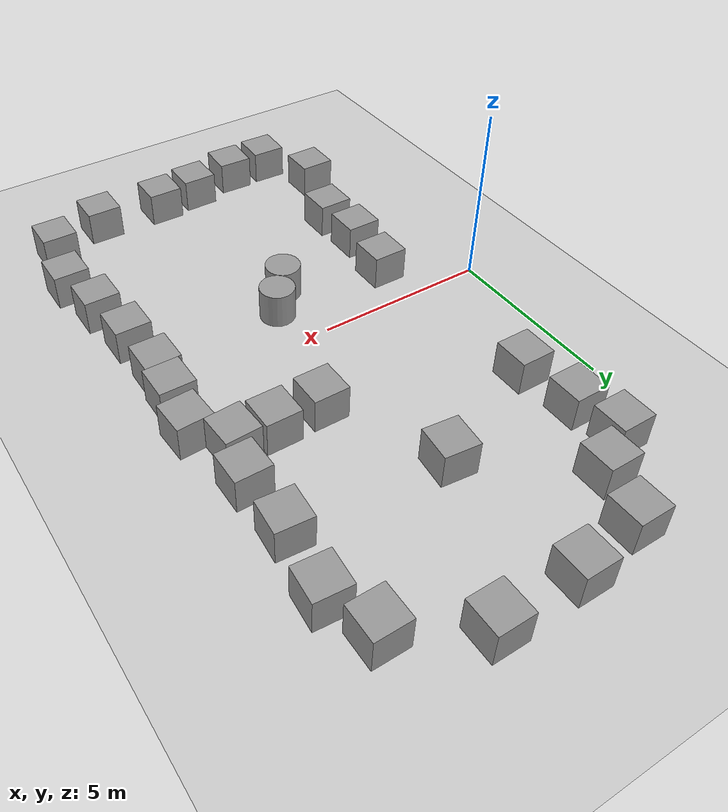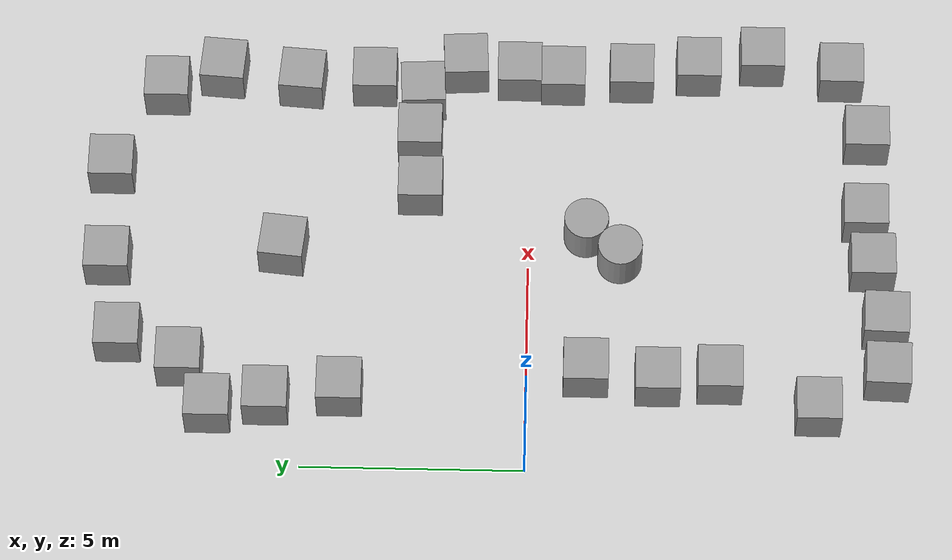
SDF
<sdf version="1.6">
 <world name="default">
  <light name="sun" type="directional">
   <pose>0 0 10 0 -0 0</pose>
   <diffuse>0.8 0.8 0.8 1</diffuse>
   <specular>0.1 0.1 0.1 1</specular>
   <attenuation>
    <range>1000</range>
    <constant>0.9</constant>
    <linear>0.01</linear>
    <quadratic>0.001</quadratic>
   </attenuation>
   <direction>-0.5 0.5 -1</direction>
  </light>
  <model name="ground_plane">
   <static>1</static>
   <link name="link">
    <collision name="collision">
     <geometry><plane><normal>0 0 1</normal><size>100 100</size></plane></geometry>
     <surface><friction><ode><mu>100</mu><mu2>50</mu2></ode></friction></surface>
    </collision>
    <visual name="visual">
     <cast_shadows>0</cast_shadows>
     <geometry><plane><normal>0 0 1</normal><size>100 100</size></plane></geometry>
     <material>
      <script><uri>file://media/materials/scripts/gazebo.material</uri><name>Gazebo/Grey</name></script>
     </material>
    </visual>
   </link>
  </model>
  <gravity>0 0 -9.8</gravity>
  <magnetic_field>6e-06 2.3e-05 -4.2e-05</magnetic_field>
  <atmosphere type="adiabatic"/>
  <physics name="default_physics" default="0" type="ode">
   <max_step_size>0.001</max_step_size>
   <real_time_factor>1</real_time_factor>
   <real_time_update_rate>1000</real_time_update_rate>
  </physics>
  <scene><ambient>0.4 0.4 0.4 1</ambient><background>0.7 0.7 0.7 1</background><shadows>1</shadows></scene>
  <spherical_coordinates>
   <surface_model>EARTH_WGS84</surface_model>
   <latitude_deg>0</latitude_deg>
   <longitude_deg>0</longitude_deg>
   <elevation>0</elevation>
   <heading_deg>0</heading_deg>
  </spherical_coordinates>
  <model name="unit_box_0">
   <pose>1.47248 -6.47187 0.499995 0 -1e-05 -0.001074</pose>
   <link name="link">
    <inertial>
     <mass>1</mass>
     <inertia>
      <ixx>0.166667</ixx>
      <ixy>0</ixy>
      <ixz>0</ixz>
      <iyy>0.166667</iyy>
      <iyz>0</iyz>
      <izz>0.166667</izz>
     </inertia>
    </inertial>
    <collision name="collision"><geometry><box><size>1 1 1</size></box></geometry></collision>
    <visual name="visual">
     <geometry><box><size>1 1 1</size></box></geometry>
     <material>
      <script><name>Gazebo/Grey</name><uri>file://media/materials/scripts/gazebo.material</uri></script>
     </material>
    </visual>
   </link>
  </model>
  <model name="unit_box_1">
   <pose>2.36247 -8.02475 0.499995 1e-05 0 -0.034213</pose>
   <link name="link">
    <inertial>
     <mass>1</mass>
     <inertia>
      <ixx>0.166667</ixx>
      <ixy>0</ixy>
      <ixz>0</ixz>
      <iyy>0.166667</iyy>
      <iyz>0</iyz>
      <izz>0.166667</izz>
     </inertia>
    </inertial>
    <collision name="collision"><geometry><box><size>1 1 1</size></box></geometry></collision>
    <visual name="visual">
     <geometry><box><size>1 1 1</size></box></geometry>
     <material>
      <script><name>Gazebo/Grey</name><uri>file://media/materials/scripts/gazebo.material</uri></script>
     </material>
    </visual>
   </link>
  </model>
  <model name="unit_box_2">
   <pose>1.51353 5.78351 0.499995 1e-05 -0 0</pose>
   <link name="link">
    <inertial>
     <mass>1</mass>
     <inertia>
      <ixx>0.166667</ixx>
      <ixy>0</ixy>
      <ixz>0</ixz>
      <iyy>0.166667</iyy>
      <iyz>0</iyz>
      <izz>0.166667</izz>
     </inertia>
    </inertial>
    <collision name="collision"><geometry><box><size>1 1 1</size></box></geometry></collision>
    <visual name="visual">
     <geometry><box><size>1 1 1</size></box></geometry>
     <material>
      <script><name>Gazebo/Grey</name><uri>file://media/materials/scripts/gazebo.material</uri></script>
     </material>
    </visual>
   </link>
  </model>
  <model name="unit_box_3">
   <pose>5.06273 -7.73261 0.499995 0 1e-05 0</pose>
   <link name="link">
    <inertial>
     <mass>1</mass>
     <inertia>
      <ixx>0.166667</ixx>
      <ixy>0</ixy>
      <ixz>0</ixz>
      <iyy>0.166667</iyy>
      <iyz>0</iyz>
      <izz>0.166667</izz>
     </inertia>
    </inertial>
    <collision name="collision"><geometry><box><size>1 1 1</size></box></geometry></collision>
    <visual name="visual">
     <geometry><box><size>1 1 1</size></box></geometry>
     <material>
      <script><name>Gazebo/Grey</name><uri>file://media/materials/scripts/gazebo.material</uri></script>
     </material>
    </visual>
   </link>
  </model>
  <model name="unit_box_4">
   <pose>6.31087 -7.59314 0.499995 -1e-05 -0 -0.00582</pose>
   <link name="link">
    <inertial>
     <mass>1</mass>
     <inertia>
      <ixx>0.166667</ixx>
      <ixy>0</ixy>
      <ixz>0</ixz>
      <iyy>0.166667</iyy>
      <iyz>0</iyz>
      <izz>0.166667</izz>
     </inertia>
    </inertial>
    <collision name="collision"><geometry><box><size>1 1 1</size></box></geometry></collision>
    <visual name="visual">
     <geometry><box><size>1 1 1</size></box></geometry>
     <material>
      <script><name>Gazebo/Grey</name><uri>file://media/materials/scripts/gazebo.material</uri></script>
     </material>
    </visual>
   </link>
  </model>
  <model name="unit_box_5">
   <pose>8.30845 -7.65271 0.499995 0 1e-05 -0.006526</pose>
   <link name="link">
    <inertial>
     <mass>1</mass>
     <inertia>
      <ixx>0.166667</ixx>
      <ixy>0</ixy>
      <ixz>0</ixz>
      <iyy>0.166667</iyy>
      <iyz>0</iyz>
      <izz>0.166667</izz>
     </inertia>
    </inertial>
    <collision name="collision"><geometry><box><size>1 1 1</size></box></geometry></collision>
    <visual name="visual">
     <geometry><box><size>1 1 1</size></box></geometry>
     <material>
      <script><name>Gazebo/Grey</name><uri>file://media/materials/scripts/gazebo.material</uri></script>
     </material>
    </visual>
   </link>
  </model>
  <model name="unit_box_6">
   <pose>9.93293 -7.09402 0.499995 -1e-05 0 -0.006505</pose>
   <link name="link">
    <inertial>
     <mass>1</mass>
     <inertia>
      <ixx>0.166667</ixx>
      <ixy>0</ixy>
      <ixz>0</ixz>
      <iyy>0.166667</iyy>
      <iyz>0</iyz>
      <izz>0.166667</izz>
     </inertia>
    </inertial>
    <collision name="collision"><geometry><box><size>1 1 1</size></box></geometry></collision>
    <visual name="visual">
     <geometry><box><size>1 1 1</size></box></geometry>
     <material>
      <script><name>Gazebo/Grey</name><uri>file://media/materials/scripts/gazebo.material</uri></script>
     </material>
    </visual>
   </link>
  </model>
  <model name="unit_box_7">
   <pose>10.3072 -5.29039 0.499995 -1e-05 0 0</pose>
   <link name="link">
    <inertial>
     <mass>1</mass>
     <inertia>
      <ixx>0.166667</ixx>
      <ixy>0</ixy>
      <ixz>0</ixz>
      <iyy>0.166667</iyy>
      <iyz>0</iyz>
      <izz>0.166667</izz>
     </inertia>
    </inertial>
    <collision name="collision"><geometry><box><size>1 1 1</size></box></geometry></collision>
    <visual name="visual">
     <geometry><box><size>1 1 1</size></box></geometry>
     <material>
      <script><name>Gazebo/Grey</name><uri>file://media/materials/scripts/gazebo.material</uri></script>
     </material>
    </visual>
   </link>
  </model>
  <model name="unit_box_8">
   <pose>10.0206 -3.83179 0.499995 0 1e-05 0</pose>
   <link name="link">
    <inertial>
     <mass>1</mass>
     <inertia>
      <ixx>0.166667</ixx>
      <ixy>0</ixy>
      <ixz>0</ixz>
      <iyy>0.166667</iyy>
      <iyz>0</iyz>
      <izz>0.166667</izz>
     </inertia>
    </inertial>
    <collision name="collision"><geometry><box><size>1 1 1</size></box></geometry></collision>
    <visual name="visual">
     <geometry><box><size>1 1 1</size></box></geometry>
     <material>
      <script><name>Gazebo/Grey</name><uri>file://media/materials/scripts/gazebo.material</uri></script>
     </material>
    </visual>
   </link>
  </model>
  <model name="unit_box_9">
   <pose>9.81542 -2.29377 0.499995 -1e-05 0 0</pose>
   <link name="link">
    <inertial>
     <mass>1</mass>
     <inertia>
      <ixx>0.166667</ixx>
      <ixy>0</ixy>
      <ixz>0</ixz>
      <iyy>0.166667</iyy>
      <iyz>0</iyz>
      <izz>0.166667</izz>
     </inertia>
    </inertial>
    <collision name="collision"><geometry><box><size>1 1 1</size></box></geometry></collision>
    <visual name="visual">
     <geometry><box><size>1 1 1</size></box></geometry>
     <material>
      <script><name>Gazebo/Grey</name><uri>file://media/materials/scripts/gazebo.material</uri></script>
     </material>
    </visual>
   </link>
  </model>
  <model name="unit_box_10">
   <pose>9.72439 -0.722401 0.499995 0 1e-05 -8.2e-05</pose>
   <link name="link">
    <inertial>
     <mass>1</mass>
     <inertia>
      <ixx>0.166667</ixx>
      <ixy>0</ixy>
      <ixz>0</ixz>
      <iyy>0.166667</iyy>
      <iyz>0</iyz>
      <izz>0.166667</izz>
     </inertia>
    </inertial>
    <collision name="collision"><geometry><box><size>1 1 1</size></box></geometry></collision>
    <visual name="visual">
     <geometry><box><size>1 1 1</size></box></geometry>
     <material>
      <script><name>Gazebo/Grey</name><uri>file://media/materials/scripts/gazebo.material</uri></script>
     </material>
    </visual>
   </link>
  </model>
  <model name="unit_box_11">
   <pose>9.81757 0.277598 0.499995 -0 -1e-05 -8.2e-05</pose>
   <link name="link">
    <inertial>
     <mass>1</mass>
     <inertia>
      <ixx>0.166667</ixx>
      <ixy>0</ixy>
      <ixz>0</ixz>
      <iyy>0.166667</iyy>
      <iyz>0</iyz>
      <izz>0.166667</izz>
     </inertia>
    </inertial>
    <collision name="collision"><geometry><box><size>1 1 1</size></box></geometry></collision>
    <visual name="visual">
     <geometry><box><size>1 1 1</size></box></geometry>
     <material>
      <script><name>Gazebo/Grey</name><uri>file://media/materials/scripts/gazebo.material</uri></script>
     </material>
    </visual>
   </link>
  </model>
  <model name="unit_box_12">
   <pose>10.0072 1.51726 0.5 0 -0 0.050217</pose>
   <link name="link">
    <inertial>
     <mass>1</mass>
     <inertia>
      <ixx>0.166667</ixx>
      <ixy>0</ixy>
      <ixz>0</ixz>
      <iyy>0.166667</iyy>
      <iyz>0</iyz>
      <izz>0.166667</izz>
     </inertia>
    </inertial>
    <collision name="collision"><geometry><box><size>1 1 1</size></box></geometry></collision>
    <visual name="visual">
     <geometry><box><size>1 1 1</size></box></geometry>
     <material>
      <script><name>Gazebo/Grey</name><uri>file://media/materials/scripts/gazebo.material</uri></script>
     </material>
    </visual>
   </link>
  </model>
  <model name="unit_box_13">
   <pose>9.25746 2.48178 0.499995 0 1e-05 0.050215</pose>
   <link name="link">
    <inertial>
     <mass>1</mass>
     <inertia>
      <ixx>0.166667</ixx>
      <ixy>0</ixy>
      <ixz>0</ixz>
      <iyy>0.166667</iyy>
      <iyz>0</iyz>
      <izz>0.166667</izz>
     </inertia>
    </inertial>
    <collision name="collision"><geometry><box><size>1 1 1</size></box></geometry></collision>
    <visual name="visual">
     <geometry><box><size>1 1 1</size></box></geometry>
     <material>
      <script><name>Gazebo/Grey</name><uri>file://media/materials/scripts/gazebo.material</uri></script>
     </material>
    </visual>
   </link>
  </model>
  <model name="unit_box_14">
   <pose>9.61086 3.59614 0.499995 1e-05 -0 0</pose>
   <link name="link">
    <inertial>
     <mass>1</mass>
     <inertia>
      <ixx>0.166667</ixx>
      <ixy>0</ixy>
      <ixz>0</ixz>
      <iyy>0.166667</iyy>
      <iyz>0</iyz>
      <izz>0.166667</izz>
     </inertia>
    </inertial>
    <collision name="collision"><geometry><box><size>1 1 1</size></box></geometry></collision>
    <visual name="visual">
     <geometry><box><size>1 1 1</size></box></geometry>
     <material>
      <script><name>Gazebo/Grey</name><uri>file://media/materials/scripts/gazebo.material</uri></script>
     </material>
    </visual>
   </link>
  </model>
  <model name="unit_box_15">
   <pose>9.54674 5.25732 0.499999 3e-06 -0 -0.074317</pose>
   <link name="link">
    <inertial>
     <mass>1</mass>
     <inertia>
      <ixx>0.166667</ixx>
      <ixy>0</ixy>
      <ixz>0</ixz>
      <iyy>0.166667</iyy>
      <iyz>0</iyz>
      <izz>0.166667</izz>
     </inertia>
    </inertial>
    <collision name="collision"><geometry><box><size>1 1 1</size></box></geometry></collision>
    <visual name="visual">
     <geometry><box><size>1 1 1</size></box></geometry>
     <material>
      <script><name>Gazebo/Grey</name><uri>file://media/materials/scripts/gazebo.material</uri></script>
     </material>
    </visual>
   </link>
  </model>
  <model name="unit_box_16">
   <pose>9.77568 7.07199 0.5 0 0 -0.074297</pose>
   <link name="link">
    <inertial>
     <mass>1</mass>
     <inertia>
      <ixx>0.166667</ixx>
      <ixy>0</ixy>
      <ixz>0</ixz>
      <iyy>0.166667</iyy>
      <iyz>0</iyz>
      <izz>0.166667</izz>
     </inertia>
    </inertial>
    <collision name="collision"><geometry><box><size>1 1 1</size></box></geometry></collision>
    <visual name="visual">
     <geometry><box><size>1 1 1</size></box></geometry>
     <material>
      <script><name>Gazebo/Grey</name><uri>file://media/materials/scripts/gazebo.material</uri></script>
     </material>
    </visual>
   </link>
  </model>
  <model name="unit_box_17">
   <pose>9.29263 8.3522 0.499995 1e-05 -0 0</pose>
   <link name="link">
    <inertial>
     <mass>1</mass>
     <inertia>
      <ixx>0.166667</ixx>
      <ixy>0</ixy>
      <ixz>0</ixz>
      <iyy>0.166667</iyy>
      <iyz>0</iyz>
      <izz>0.166667</izz>
     </inertia>
    </inertial>
    <collision name="collision"><geometry><box><size>1 1 1</size></box></geometry></collision>
    <visual name="visual">
     <geometry><box><size>1 1 1</size></box></geometry>
     <material>
      <script><name>Gazebo/Grey</name><uri>file://media/materials/scripts/gazebo.material</uri></script>
     </material>
    </visual>
   </link>
  </model>
  <model name="unit_box_18">
   <pose>7.23197 9.50984 0.499995 0 1e-05 0</pose>
   <link name="link">
    <inertial>
     <mass>1</mass>
     <inertia>
      <ixx>0.166667</ixx>
      <ixy>0</ixy>
      <ixz>0</ixz>
      <iyy>0.166667</iyy>
      <iyz>0</iyz>
      <izz>0.166667</izz>
     </inertia>
    </inertial>
    <collision name="collision"><geometry><box><size>1 1 1</size></box></geometry></collision>
    <visual name="visual">
     <geometry><box><size>1 1 1</size></box></geometry>
     <material>
      <script><name>Gazebo/Grey</name><uri>file://media/materials/scripts/gazebo.material</uri></script>
     </material>
    </visual>
   </link>
  </model>
  <model name="unit_box_19">
   <pose>2.41884 7.74542 0.499995 -1e-05 0 0</pose>
   <link name="link">
    <inertial>
     <mass>1</mass>
     <inertia>
      <ixx>0.166667</ixx>
      <ixy>0</ixy>
      <ixz>0</ixz>
      <iyy>0.166667</iyy>
      <iyz>0</iyz>
      <izz>0.166667</izz>
     </inertia>
    </inertial>
    <collision name="collision"><geometry><box><size>1 1 1</size></box></geometry></collision>
    <visual name="visual">
     <geometry><box><size>1 1 1</size></box></geometry>
     <material>
      <script><name>Gazebo/Grey</name><uri>file://media/materials/scripts/gazebo.material</uri></script>
     </material>
    </visual>
   </link>
  </model>
  <model name="unit_box_20">
   <pose>4.90563 9.4816 0.499995 0 1e-05 0</pose>
   <link name="link">
    <inertial>
     <mass>1</mass>
     <inertia>
      <ixx>0.166667</ixx>
      <ixy>0</ixy>
      <ixz>0</ixz>
      <iyy>0.166667</iyy>
      <iyz>0</iyz>
      <izz>0.166667</izz>
     </inertia>
    </inertial>
    <collision name="collision"><geometry><box><size>1 1 1</size></box></geometry></collision>
    <visual name="visual">
     <geometry><box><size>1 1 1</size></box></geometry>
     <material>
      <script><name>Gazebo/Grey</name><uri>file://media/materials/scripts/gazebo.material</uri></script>
     </material>
    </visual>
   </link>
  </model>
  <model name="unit_box_21">
   <pose>1.29829 7.06059 0.499995 -1e-05 0 0</pose>
   <link name="link">
    <inertial>
     <mass>1</mass>
     <inertia>
      <ixx>0.166667</ixx>
      <ixy>0</ixy>
      <ixz>0</ixz>
      <iyy>0.166667</iyy>
      <iyz>0</iyz>
      <izz>0.166667</izz>
     </inertia>
    </inertial>
    <collision name="collision"><geometry><box><size>1 1 1</size></box></geometry></collision>
    <visual name="visual">
     <geometry><box><size>1 1 1</size></box></geometry>
     <material>
      <script><name>Gazebo/Grey</name><uri>file://media/materials/scripts/gazebo.material</uri></script>
     </material>
    </visual>
   </link>
  </model>
  <model name="unit_box_22">
   <pose>2.99709 9.14452 0.499995 0 1e-05 0</pose>
   <link name="link">
    <inertial>
     <mass>1</mass>
     <inertia>
      <ixx>0.166667</ixx>
      <ixy>0</ixy>
      <ixz>0</ixz>
      <iyy>0.166667</iyy>
      <iyz>0</iyz>
      <izz>0.166667</izz>
     </inertia>
    </inertial>
    <collision name="collision"><geometry><box><size>1 1 1</size></box></geometry></collision>
    <visual name="visual">
     <geometry><box><size>1 1 1</size></box></geometry>
     <material>
      <script><name>Gazebo/Grey</name><uri>file://media/materials/scripts/gazebo.material</uri></script>
     </material>
    </visual>
   </link>
  </model>
  <model name="unit_box_23">
   <pose>3.6147 -8.0089 0.499995 -1e-05 -0 -0.034215</pose>
   <link name="link">
    <inertial>
     <mass>1</mass>
     <inertia>
      <ixx>0.166667</ixx>
      <ixy>0</ixy>
      <ixz>0</ixz>
      <iyy>0.166667</iyy>
      <iyz>0</iyz>
      <izz>0.166667</izz>
     </inertia>
    </inertial>
    <collision name="collision"><geometry><box><size>1 1 1</size></box></geometry></collision>
    <visual name="visual">
     <geometry><box><size>1 1 1</size></box></geometry>
     <material>
      <script><name>Gazebo/Grey</name><uri>file://media/materials/scripts/gazebo.material</uri></script>
     </material>
    </visual>
   </link>
  </model>
  <model name="unit_box_24">
   <pose>2.21078 -4.29252 0.499995 -1e-05 0 0</pose>
   <link name="link">
    <inertial>
     <mass>1</mass>
     <inertia>
      <ixx>0.166667</ixx>
      <ixy>0</ixy>
      <ixz>0</ixz>
      <iyy>0.166667</iyy>
      <iyz>0</iyz>
      <izz>0.166667</izz>
     </inertia>
    </inertial>
    <collision name="collision"><geometry><box><size>1 1 1</size></box></geometry></collision>
    <visual name="visual">
     <geometry><box><size>1 1 1</size></box></geometry>
     <material>
      <script><name>Gazebo/Grey</name><uri>file://media/materials/scripts/gazebo.material</uri></script>
     </material>
    </visual>
   </link>
  </model>
  <model name="unit_box_25">
   <pose>1.75984 4.15216 0.499995 0 1e-05 0</pose>
   <link name="link">
    <inertial>
     <mass>1</mass>
     <inertia>
      <ixx>0.166667</ixx>
      <ixy>0</ixy>
      <ixz>0</ixz>
      <iyy>0.166667</iyy>
      <iyz>0</iyz>
      <izz>0.166667</izz>
     </inertia>
    </inertial>
    <collision name="collision"><geometry><box><size>1 1 1</size></box></geometry></collision>
    <visual name="visual">
     <geometry><box><size>1 1 1</size></box></geometry>
     <material>
      <script><name>Gazebo/Grey</name><uri>file://media/materials/scripts/gazebo.material</uri></script>
     </material>
    </visual>
   </link>
  </model>
  <model name="unit_box_26">
   <pose>2.32899 -1.31256 0.499995 -1e-05 0 0</pose>
   <link name="link">
    <inertial>
     <mass>1</mass>
     <inertia>
      <ixx>0.166667</ixx>
      <ixy>0</ixy>
      <ixz>0</ixz>
      <iyy>0.166667</iyy>
      <iyz>0</iyz>
      <izz>0.166667</izz>
     </inertia>
    </inertial>
    <collision name="collision"><geometry><box><size>1 1 1</size></box></geometry></collision>
    <visual name="visual">
     <geometry><box><size>1 1 1</size></box></geometry>
     <material>
      <script><name>Gazebo/Grey</name><uri>file://media/materials/scripts/gazebo.material</uri></script>
     </material>
    </visual>
   </link>
  </model>
  <model name="unit_box_27">
   <pose>2.13041 -2.91033 0.499995 0 1e-05 0</pose>
   <link name="link">
    <inertial>
     <mass>1</mass>
     <inertia>
      <ixx>0.166667</ixx>
      <ixy>0</ixy>
      <ixz>0</ixz>
      <iyy>0.166667</iyy>
      <iyz>0</iyz>
      <izz>0.166667</izz>
     </inertia>
    </inertial>
    <collision name="collision"><geometry><box><size>1 1 1</size></box></geometry></collision>
    <visual name="visual">
     <geometry><box><size>1 1 1</size></box></geometry>
     <material>
      <script><name>Gazebo/Grey</name><uri>file://media/materials/scripts/gazebo.material</uri></script>
     </material>
    </visual>
   </link>
  </model>
  <model name="unit_box_28">
   <pose>5.25641 5.53867 0.499995 0 1e-05 -0.101269</pose>
   <link name="link">
    <inertial>
     <mass>1</mass>
     <inertia>
      <ixx>0.166667</ixx>
      <ixy>0</ixy>
      <ixz>0</ixz>
      <iyy>0.166667</iyy>
      <iyz>0</iyz>
      <izz>0.166667</izz>
     </inertia>
    </inertial>
    <collision name="collision"><geometry><box><size>1 1 1</size></box></geometry></collision>
    <visual name="visual">
     <geometry><box><size>1 1 1</size></box></geometry>
     <material>
      <script><name>Gazebo/Grey</name><uri>file://media/materials/scripts/gazebo.material</uri></script>
     </material>
    </visual>
   </link>
  </model>
  <model name="unit_cylinder_0">
   <pose>5.16002 -2.05272 0.499991 0 -0 3.7e-05</pose>
   <link name="link">
    <inertial>
     <mass>1</mass>
     <inertia><ixx>0.145833</ixx><ixy>0</ixy><ixz>0</ixz><iyy>0.145833</iyy><iyz>0</iyz><izz>0.125</izz></inertia>
    </inertial>
    <collision name="collision">
     <geometry><cylinder><radius>0.5</radius><length>1</length></cylinder></geometry>
    </collision>
    <visual name="visual">
     <geometry><cylinder><radius>0.5</radius><length>1</length></cylinder></geometry>
     <material>
      <script><name>Gazebo/Grey</name><uri>file://media/materials/scripts/gazebo.material</uri></script>
     </material>
    </visual>
   </link>
  </model>
  <model name="unit_cylinder_1">
   <pose>5.80418 -1.28782 0.499998 3e-06 -2e-06 3.3e-05</pose>
   <link name="link">
    <inertial>
     <mass>1</mass>
     <inertia><ixx>0.145833</ixx><ixy>0</ixy><ixz>0</ixz><iyy>0.145833</iyy><iyz>0</iyz><izz>0.125</izz></inertia>
    </inertial>
    <collision name="collision">
     <geometry><cylinder><radius>0.5</radius><length>1</length></cylinder></geometry>
    </collision>
    <visual name="visual">
     <geometry><cylinder><radius>0.5</radius><length>1</length></cylinder></geometry>
     <material>
      <script><name>Gazebo/Grey</name><uri>file://media/materials/scripts/gazebo.material</uri></script>
     </material>
    </visual>
   </link>
  </model>
  <model name="unit_box_29">
   <pose>8.1737 2.52453 0.499995 0 1e-05 0</pose>
   <link name="link">
    <inertial>
     <mass>1</mass>
     <inertia>
      <ixx>0.166667</ixx>
      <ixy>0</ixy>
      <ixz>0</ixz>
      <iyy>0.166667</iyy>
      <iyz>0</iyz>
      <izz>0.166667</izz>
     </inertia>
    </inertial>
    <collision name="collision"><geometry><box><size>1 1 1</size></box></geometry></collision>
    <visual name="visual">
     <geometry><box><size>1 1 1</size></box></geometry>
     <material>
      <script><name>Gazebo/Grey</name><uri>file://media/materials/scripts/gazebo.material</uri></script>
     </material>
    </visual>
   </link>
  </model>
  <model name="unit_box_30">
   <pose>6.81618 2.48055 0.499995 -1e-05 0 0</pose>
   <link name="link">
    <inertial>
     <mass>1</mass>
     <inertia>
      <ixx>0.166667</ixx>
      <ixy>0</ixy>
      <ixz>0</ixz>
      <iyy>0.166667</iyy>
      <iyz>0</iyz>
      <izz>0.166667</izz>
     </inertia>
    </inertial>
    <collision name="collision"><geometry><box><size>1 1 1</size></box></geometry></collision>
    <visual name="visual">
     <geometry><box><size>1 1 1</size></box></geometry>
     <material>
      <script><name>Gazebo/Grey</name><uri>file://media/materials/scripts/gazebo.material</uri></script>
     </material>
    </visual>
   </link>
  </model>
 </world>
</sdf>
